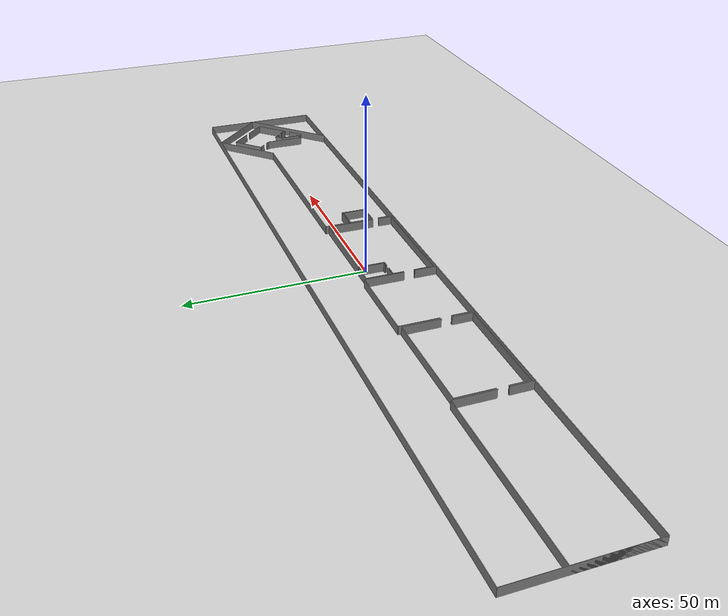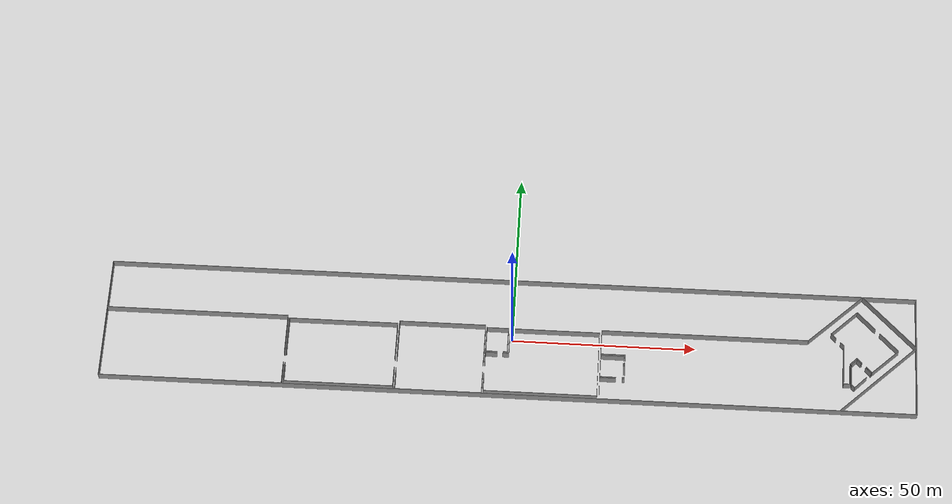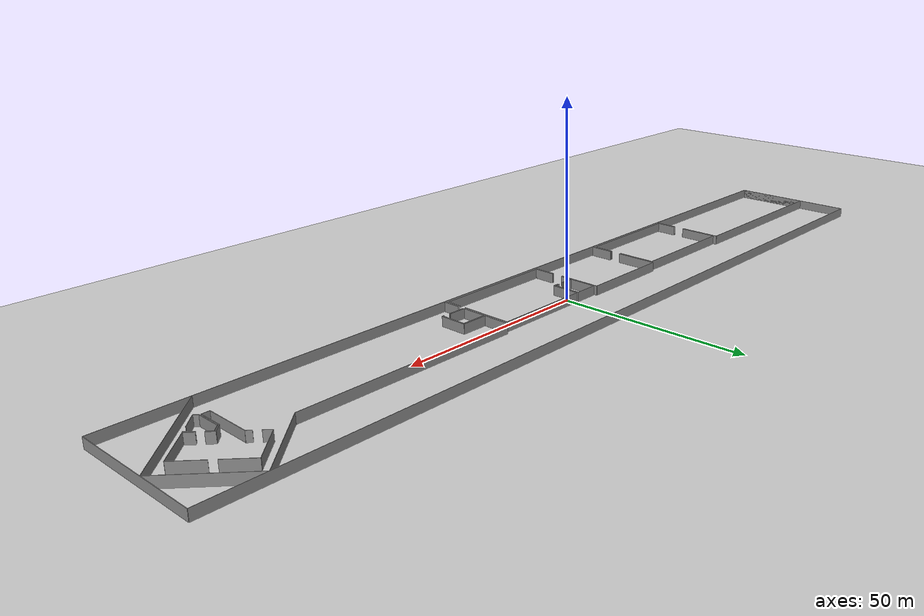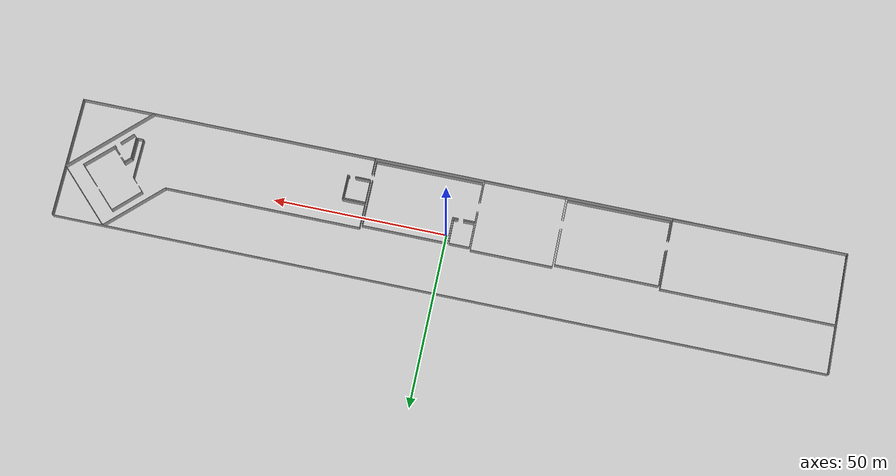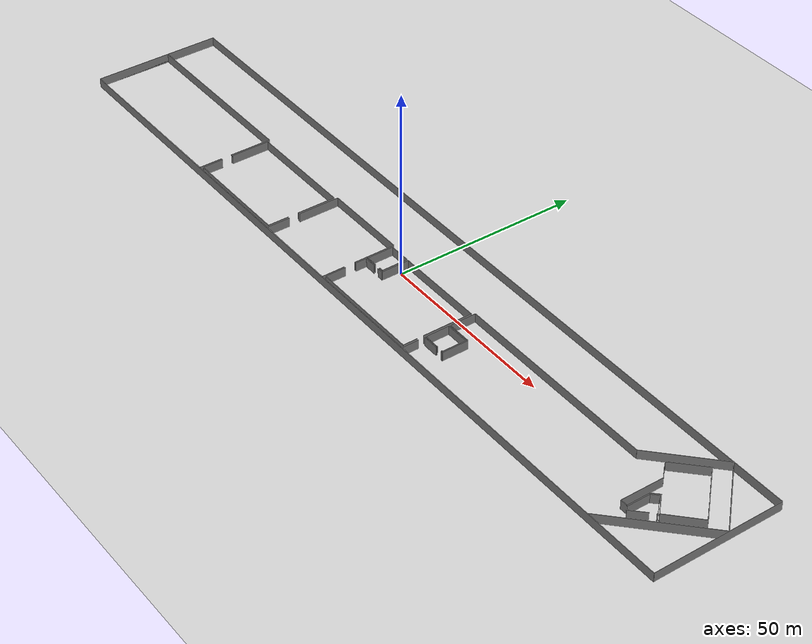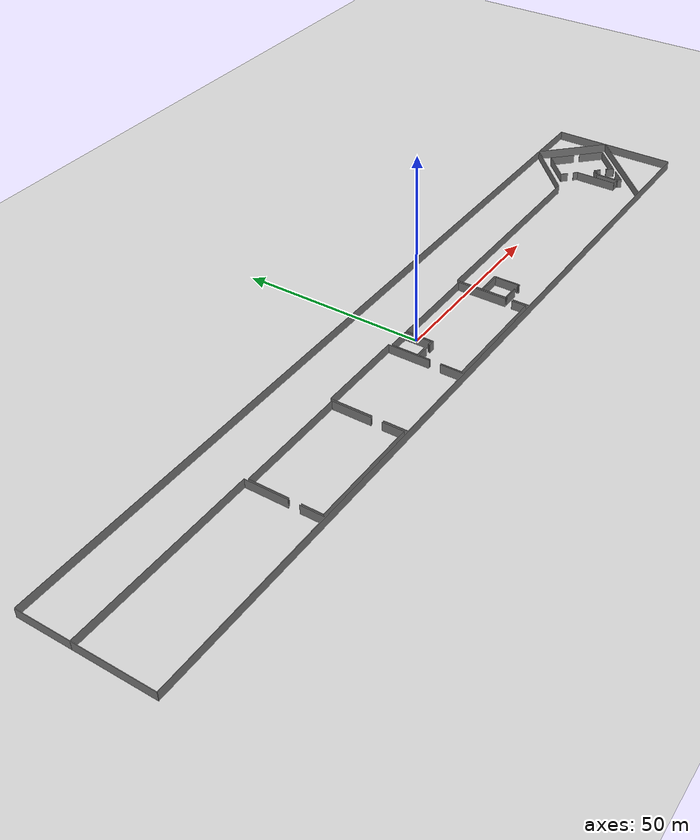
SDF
<sdf version="1.6">
  <world name="default">
    <light name="sun" type="directional">
      <cast_shadows>1</cast_shadows>
      <pose frame="">0 0 10 0 -0 0</pose>
      <diffuse>0.8 0.8 0.8 1</diffuse>
      <specular>0.1 0.1 0.1 1</specular>
      <attenuation>
        <range>1000</range>
        <constant>0.9</constant>
        <linear>0.01</linear>
        <quadratic>0.001</quadratic>
      </attenuation>
      <direction>-0.5 0.5 -1</direction>
    </light>
    <model name="ground_plane">
      <static>1</static>
      <link name="link">
        <collision name="collision">
          <geometry>
            <plane>
              <normal>0 0 1</normal>
              <size>100 100</size>
            </plane>
          </geometry>
          <surface>
            <friction>
              <ode>
                <mu>100</mu>
                <mu2>50</mu2>
              </ode>
              <torsional>
                <ode />
              </torsional>
            </friction>
            <contact>
              <ode />
            </contact>
            <bounce />
          </surface>
          <max_contacts>10</max_contacts>
        </collision>
        <visual name="visual">
          <cast_shadows>0</cast_shadows>
          <geometry>
            <plane>
              <normal>0 0 1</normal>
              <size>100 100</size>
            </plane>
          </geometry>
          <material>
            <script>
              <uri>file://media/materials/scripts/gazebo.material</uri>
              <name>Gazebo/Grey</name>
            </script>
          </material>
        </visual>
        <self_collide>0</self_collide>
        <kinematic>0</kinematic>
        <gravity>1</gravity>
      </link>
    </model>
    <gravity>0 0 -9.8</gravity>
    <magnetic_field>6e-06 2.3e-05 -4.2e-05</magnetic_field>
    <atmosphere type="adiabatic" />
    <physics default="0" name="default_physics" type="ode">
      <max_step_size>0.001</max_step_size>
      <real_time_factor>1</real_time_factor>
      <real_time_update_rate>1000</real_time_update_rate>
    </physics>
    <scene>
      <ambient>0.4 0.4 0.4 1</ambient>
      <background>0.7 0.7 0.7 1</background>
      <shadows>1</shadows>
    </scene>
    <spherical_coordinates>
      <surface_model>EARTH_WGS84</surface_model>
      <latitude_deg>0</latitude_deg>
      <longitude_deg>0</longitude_deg>
      <elevation>0</elevation>
      <heading_deg>0</heading_deg>
    </spherical_coordinates>
  <model name="0510035345_A_40_1_104">
		<static>1</static>
		<link name="Wall_0">
			<collision name="Wall_0_Collision">
				<geometry>
					<box>
						<size>20.7215912337 0.1 2.5</size>
					</box>
				</geometry>
				<pose frame="">10.3607956169 0 1.25 0 0 0</pose>
			</collision>
			<visual name="Wall_0_Visual">
				<pose frame="">10.3607956169 0 1.25 0 0 0</pose>
				<geometry>
					<box>
						<size>20.7215912337 0.1 2.5</size>
					</box>
				</geometry>
				<material>
					<script>
						<uri>file://media/materials/scripts/gazebo.material</uri>
						<name>Gazebo/Grey</name>
					</script>
					<ambient>1 1 1 1</ambient>
				</material>
			</visual>
			<pose frame="">0.0 -34.8943896694 0 0 0 1.57079632679</pose>
		</link>
		<link name="Wall_1">
			<collision name="Wall_1_Collision">
				<geometry>
					<box>
						<size>49.7723997384 0.1 2.5</size>
					</box>
				</geometry>
				<pose frame="">24.8861998692 0 1.25 0 0 0</pose>
			</collision>
			<visual name="Wall_1_Visual">
				<pose frame="">24.8861998692 0 1.25 0 0 0</pose>
				<geometry>
					<box>
						<size>49.7723997384 0.1 2.5</size>
					</box>
				</geometry>
				<material>
					<script>
						<uri>file://media/materials/scripts/gazebo.material</uri>
						<name>Gazebo/Grey</name>
					</script>
					<ambient>1 1 1 1</ambient>
				</material>
			</visual>
			<pose frame="">0.0 -14.1727984357 0 0 0 0.0</pose>
		</link>
		<link name="Wall_2">
			<collision name="Wall_2_Collision">
				<geometry>
					<box>
						<size>11.3514440078 0.1 2.5</size>
					</box>
				</geometry>
				<pose frame="">5.6757220039 0 1.25 0 0 0</pose>
			</collision>
			<visual name="Wall_2_Visual">
				<pose frame="">5.6757220039 0 1.25 0 0 0</pose>
				<geometry>
					<box>
						<size>11.3514440078 0.1 2.5</size>
					</box>
				</geometry>
				<material>
					<script>
						<uri>file://media/materials/scripts/gazebo.material</uri>
						<name>Gazebo/Grey</name>
					</script>
					<ambient>1 1 1 1</ambient>
				</material>
			</visual>
			<pose frame="">49.7723997384 -14.1727984357 0 0 0 -1.57079632679</pose>
		</link>
		<link name="Wall_3">
			<collision name="Wall_3_Collision">
				<geometry>
					<box>
						<size>6.35579285519 0.1 2.5</size>
					</box>
				</geometry>
				<pose frame="">3.1778964276 0 1.25 0 0 0</pose>
			</collision>
			<visual name="Wall_3_Visual">
				<pose frame="">3.1778964276 0 1.25 0 0 0</pose>
				<geometry>
					<box>
						<size>6.35579285519 0.1 2.5</size>
					</box>
				</geometry>
				<material>
					<script>
						<uri>file://media/materials/scripts/gazebo.material</uri>
						<name>Gazebo/Grey</name>
					</script>
					<ambient>1 1 1 1</ambient>
				</material>
			</visual>
			<pose frame="">49.7723997384 -28.4182257972 0 0 0 -1.57079632679</pose>
		</link>
		<link name="Wall_4">
			<collision name="Wall_4_Collision">
				<geometry>
					<box>
						<size>49.7725452926 0.1 2.5</size>
					</box>
				</geometry>
				<pose frame="">24.8862726463 0 1.25 0 0 0</pose>
			</collision>
			<visual name="Wall_4_Visual">
				<pose frame="">24.8862726463 0 1.25 0 0 0</pose>
				<geometry>
					<box>
						<size>49.7725452926 0.1 2.5</size>
					</box>
				</geometry>
				<material>
					<script>
						<uri>file://media/materials/scripts/gazebo.material</uri>
						<name>Gazebo/Grey</name>
					</script>
					<ambient>1 1 1 1</ambient>
				</material>
			</visual>
			<pose frame="">49.7723997384 -34.7740186524 0 0 0 -3.13917422926</pose>
		</link>
		<link name="Wall_5">
			<collision name="Wall_5_Collision">
				<geometry>
					<box>
						<size>5.58785624044 0.1 2.5</size>
					</box>
				</geometry>
				<pose frame="">2.79392812022 0 1.25 0 0 0</pose>
			</collision>
			<visual name="Wall_5_Visual">
				<pose frame="">2.79392812022 0 1.25 0 0 0</pose>
				<geometry>
					<box>
						<size>5.58785624044 0.1 2.5</size>
					</box>
				</geometry>
				<material>
					<script>
						<uri>file://media/materials/scripts/gazebo.material</uri>
						<name>Gazebo/Grey</name>
					</script>
					<ambient>1 1 1 1</ambient>
				</material>
			</visual>
			<pose frame="">50.2284890771 -34.0685530718 0 0 0 1.57079632679</pose>
		</link>
		<link name="Wall_6">
			<collision name="Wall_6_Collision">
				<geometry>
					<box>
						<size>10.5027521538 0.1 2.5</size>
					</box>
				</geometry>
				<pose frame="">5.2513760769 0 1.25 0 0 0</pose>
			</collision>
			<visual name="Wall_6_Visual">
				<pose frame="">5.2513760769 0 1.25 0 0 0</pose>
				<geometry>
					<box>
						<size>10.5027521538 0.1 2.5</size>
					</box>
				</geometry>
				<material>
					<script>
						<uri>file://media/materials/scripts/gazebo.material</uri>
						<name>Gazebo/Grey</name>
					</script>
					<ambient>1 1 1 1</ambient>
				</material>
			</visual>
			<pose frame="">50.2284890771 -25.4561845689 0 0 0 1.57079632679</pose>
		</link>
		<link name="Wall_7">
			<collision name="Wall_7_Collision">
				<geometry>
					<box>
						<size>29.7128490982 0.1 2.5</size>
					</box>
				</geometry>
				<pose frame="">14.8564245491 0 1.25 0 0 0</pose>
			</collision>
			<visual name="Wall_7_Visual">
				<pose frame="">14.8564245491 0 1.25 0 0 0</pose>
				<geometry>
					<box>
						<size>29.7128490982 0.1 2.5</size>
					</box>
				</geometry>
				<material>
					<script>
						<uri>file://media/materials/scripts/gazebo.material</uri>
						<name>Gazebo/Grey</name>
					</script>
					<ambient>1 1 1 1</ambient>
				</material>
			</visual>
			<pose frame="">50.2284890771 -14.9534324151 0 0 0 0.0</pose>
		</link>
		<link name="Wall_8">
			<collision name="Wall_8_Collision">
				<geometry>
					<box>
						<size>10.5461771409 0.1 2.5</size>
					</box>
				</geometry>
				<pose frame="">5.27308857047 0 1.25 0 0 0</pose>
			</collision>
			<visual name="Wall_8_Visual">
				<pose frame="">5.27308857047 0 1.25 0 0 0</pose>
				<geometry>
					<box>
						<size>10.5461771409 0.1 2.5</size>
					</box>
				</geometry>
				<material>
					<script>
						<uri>file://media/materials/scripts/gazebo.material</uri>
						<name>Gazebo/Grey</name>
					</script>
					<ambient>1 1 1 1</ambient>
				</material>
			</visual>
			<pose frame="">79.9413381753 -14.9534324151 0 0 0 -1.57079632679</pose>
		</link>
		<link name="Wall_9">
			<collision name="Wall_9_Collision">
				<geometry>
					<box>
						<size>5.67724568766 0.1 2.5</size>
					</box>
				</geometry>
				<pose frame="">2.83862284383 0 1.25 0 0 0</pose>
			</collision>
			<visual name="Wall_9_Visual">
				<pose frame="">2.83862284383 0 1.25 0 0 0</pose>
				<geometry>
					<box>
						<size>5.67724568766 0.1 2.5</size>
					</box>
				</geometry>
				<material>
					<script>
						<uri>file://media/materials/scripts/gazebo.material</uri>
						<name>Gazebo/Grey</name>
					</script>
					<ambient>1 1 1 1</ambient>
				</material>
			</visual>
			<pose frame="">79.9413381753 -28.3781021249 0 0 0 -1.57079632679</pose>
		</link>
		<link name="Wall_10">
			<collision name="Wall_10_Collision">
				<geometry>
					<box>
						<size>29.7128520326 0.1 2.5</size>
					</box>
				</geometry>
				<pose frame="">14.8564260163 0 1.25 0 0 0</pose>
			</collision>
			<visual name="Wall_10_Visual">
				<pose frame="">14.8564260163 0 1.25 0 0 0</pose>
				<geometry>
					<box>
						<size>29.7128520326 0.1 2.5</size>
					</box>
				</geometry>
				<material>
					<script>
						<uri>file://media/materials/scripts/gazebo.material</uri>
						<name>Gazebo/Grey</name>
					</script>
					<ambient>1 1 1 1</ambient>
				</material>
			</visual>
			<pose frame="">79.9413381753 -34.0553478126 0 0 0 -3.14114822437</pose>
		</link>
		<link name="Wall_11">
			<collision name="Wall_11_Collision">
				<geometry>
					<box>
						<size>6.39947178963 0.1 2.5</size>
					</box>
				</geometry>
				<pose frame="">3.19973589482 0 1.25 0 0 0</pose>
			</collision>
			<visual name="Wall_11_Visual">
				<pose frame="">3.19973589482 0 1.25 0 0 0</pose>
				<geometry>
					<box>
						<size>6.39947178963 0.1 2.5</size>
					</box>
				</geometry>
				<material>
					<script>
						<uri>file://media/materials/scripts/gazebo.material</uri>
						<name>Gazebo/Grey</name>
					</script>
					<ambient>1 1 1 1</ambient>
				</material>
			</visual>
			<pose frame="">80.4736117019 -34.8050002222 0 0 0 1.57079632679</pose>
		</link>
		<link name="Wall_12">
			<collision name="Wall_12_Collision">
				<geometry>
					<box>
						<size>11.1736809025 0.1 2.5</size>
					</box>
				</geometry>
				<pose frame="">5.58684045126 0 1.25 0 0 0</pose>
			</collision>
			<visual name="Wall_12_Visual">
				<pose frame="">5.58684045126 0 1.25 0 0 0</pose>
				<geometry>
					<box>
						<size>11.1736809025 0.1 2.5</size>
					</box>
				</geometry>
				<material>
					<script>
						<uri>file://media/materials/scripts/gazebo.material</uri>
						<name>Gazebo/Grey</name>
					</script>
					<ambient>1 1 1 1</ambient>
				</material>
			</visual>
			<pose frame="">80.4736117019 -25.411235898 0 0 0 1.57079632679</pose>
		</link>
		<link name="Wall_13">
			<collision name="Wall_13_Collision">
				<geometry>
					<box>
						<size>23.5376127685 0.1 2.5</size>
					</box>
				</geometry>
				<pose frame="">11.7688063842 0 1.25 0 0 0</pose>
			</collision>
			<visual name="Wall_13_Visual">
				<pose frame="">11.7688063842 0 1.25 0 0 0</pose>
				<geometry>
					<box>
						<size>23.5376127685 0.1 2.5</size>
					</box>
				</geometry>
				<material>
					<script>
						<uri>file://media/materials/scripts/gazebo.material</uri>
						<name>Gazebo/Grey</name>
					</script>
					<ambient>1 1 1 1</ambient>
				</material>
			</visual>
			<pose frame="">80.4736117019 -14.2375549955 0 0 0 0.0</pose>
		</link>
		<link name="Wall_14">
			<collision name="Wall_14_Collision">
				<geometry>
					<box>
						<size>11.2811006076 0.1 2.5</size>
					</box>
				</geometry>
				<pose frame="">5.64055030378 0 1.25 0 0 0</pose>
			</collision>
			<visual name="Wall_14_Visual">
				<pose frame="">5.64055030378 0 1.25 0 0 0</pose>
				<geometry>
					<box>
						<size>11.2811006076 0.1 2.5</size>
					</box>
				</geometry>
				<material>
					<script>
						<uri>file://media/materials/scripts/gazebo.material</uri>
						<name>Gazebo/Grey</name>
					</script>
					<ambient>1 1 1 1</ambient>
				</material>
			</visual>
			<pose frame="">104.01122447 -14.2375549955 0 0 0 -1.57079632679</pose>
		</link>
		<link name="Wall_15">
			<collision name="Wall_15_Collision">
				<geometry>
					<box>
						<size>6.30805076406 0.1 2.5</size>
					</box>
				</geometry>
				<pose frame="">3.15402538203 0 1.25 0 0 0</pose>
			</collision>
			<visual name="Wall_15_Visual">
				<pose frame="">3.15402538203 0 1.25 0 0 0</pose>
				<geometry>
					<box>
						<size>6.30805076406 0.1 2.5</size>
					</box>
				</geometry>
				<material>
					<script>
						<uri>file://media/materials/scripts/gazebo.material</uri>
						<name>Gazebo/Grey</name>
					</script>
					<ambient>1 1 1 1</ambient>
				</material>
			</visual>
			<pose frame="">104.01122447 -28.5045678769 0 0 0 -1.57079632679</pose>
		</link>
		<link name="Wall_16">
			<collision name="Wall_16_Collision">
				<geometry>
					<box>
						<size>23.5376140014 0.1 2.5</size>
					</box>
				</geometry>
				<pose frame="">11.7688070007 0 1.25 0 0 0</pose>
			</collision>
			<visual name="Wall_16_Visual">
				<pose frame="">11.7688070007 0 1.25 0 0 0</pose>
				<geometry>
					<box>
						<size>23.5376140014 0.1 2.5</size>
					</box>
				</geometry>
				<material>
					<script>
						<uri>file://media/materials/scripts/gazebo.material</uri>
						<name>Gazebo/Grey</name>
					</script>
					<ambient>1 1 1 1</ambient>
				</material>
			</visual>
			<pose frame="">104.01122447 -34.812618641 0 0 0 3.14126898362</pose>
		</link>
		<link name="Wall_17">
			<collision name="Wall_17_Collision">
				<geometry>
					<box>
						<size>5.55052598833 0.1 2.5</size>
					</box>
				</geometry>
				<pose frame="">2.77526299417 0 1.25 0 0 0</pose>
			</collision>
			<visual name="Wall_17_Visual">
				<pose frame="">2.77526299417 0 1.25 0 0 0</pose>
				<geometry>
					<box>
						<size>5.55052598833 0.1 2.5</size>
					</box>
				</geometry>
				<material>
					<script>
						<uri>file://media/materials/scripts/gazebo.material</uri>
						<name>Gazebo/Grey</name>
					</script>
					<ambient>1 1 1 1</ambient>
				</material>
			</visual>
			<pose frame="">104.38655857 -34.0454438681 0 0 0 1.57079632679</pose>
		</link>
		<link name="Wall_18">
			<collision name="Wall_18_Collision">
				<geometry>
					<box>
						<size>3.05219251744 0.1 2.5</size>
					</box>
				</geometry>
				<pose frame="">1.52609625872 0 1.25 0 0 0</pose>
			</collision>
			<visual name="Wall_18_Visual">
				<pose frame="">1.52609625872 0 1.25 0 0 0</pose>
				<geometry>
					<box>
						<size>3.05219251744 0.1 2.5</size>
					</box>
				</geometry>
				<material>
					<script>
						<uri>file://media/materials/scripts/gazebo.material</uri>
						<name>Gazebo/Grey</name>
					</script>
					<ambient>1 1 1 1</ambient>
				</material>
			</visual>
			<pose frame="">104.38655857 -25.5356700717 0 0 0 1.57079632679</pose>
		</link>
		<link name="Wall_19">
			<collision name="Wall_19_Collision">
				<geometry>
					<box>
						<size>3.23097141188 0.1 2.5</size>
					</box>
				</geometry>
				<pose frame="">1.61548570594 0 1.25 0 0 0</pose>
			</collision>
			<visual name="Wall_19_Visual">
				<pose frame="">1.61548570594 0 1.25 0 0 0</pose>
				<geometry>
					<box>
						<size>3.23097141188 0.1 2.5</size>
					</box>
				</geometry>
				<material>
					<script>
						<uri>file://media/materials/scripts/gazebo.material</uri>
						<name>Gazebo/Grey</name>
					</script>
					<ambient>1 1 1 1</ambient>
				</material>
			</visual>
			<pose frame="">104.38655857 -22.4834775542 0 0 0 0.0</pose>
		</link>
		<link name="Wall_20">
			<collision name="Wall_20_Collision">
				<geometry>
					<box>
						<size>1.65141924794 0.1 2.5</size>
					</box>
				</geometry>
				<pose frame="">0.825709623968 0 1.25 0 0 0</pose>
			</collision>
			<visual name="Wall_20_Visual">
				<pose frame="">0.825709623968 0 1.25 0 0 0</pose>
				<geometry>
					<box>
						<size>1.65141924794 0.1 2.5</size>
					</box>
				</geometry>
				<material>
					<script>
						<uri>file://media/materials/scripts/gazebo.material</uri>
						<name>Gazebo/Grey</name>
					</script>
					<ambient>1 1 1 1</ambient>
				</material>
			</visual>
			<pose frame="">109.10845454 -22.4834775542 0 0 0 0.0</pose>
		</link>
		<link name="Wall_21">
			<collision name="Wall_21_Collision">
				<geometry>
					<box>
						<size>7.54502802943 0.1 2.5</size>
					</box>
				</geometry>
				<pose frame="">3.77251401472 0 1.25 0 0 0</pose>
			</collision>
			<visual name="Wall_21_Visual">
				<pose frame="">3.77251401472 0 1.25 0 0 0</pose>
				<geometry>
					<box>
						<size>7.54502802943 0.1 2.5</size>
					</box>
				</geometry>
				<material>
					<script>
						<uri>file://media/materials/scripts/gazebo.material</uri>
						<name>Gazebo/Grey</name>
					</script>
					<ambient>1 1 1 1</ambient>
				</material>
			</visual>
			<pose frame="">110.759873788 -22.4834775542 0 0 0 1.57079632679</pose>
		</link>
		<link name="Wall_22">
			<collision name="Wall_22_Collision">
				<geometry>
					<box>
						<size>24.4632506523 0.1 2.5</size>
					</box>
				</geometry>
				<pose frame="">12.2316253262 0 1.25 0 0 0</pose>
			</collision>
			<visual name="Wall_22_Visual">
				<pose frame="">12.2316253262 0 1.25 0 0 0</pose>
				<geometry>
					<box>
						<size>24.4632506523 0.1 2.5</size>
					</box>
				</geometry>
				<material>
					<script>
						<uri>file://media/materials/scripts/gazebo.material</uri>
						<name>Gazebo/Grey</name>
					</script>
					<ambient>1 1 1 1</ambient>
				</material>
			</visual>
			<pose frame="">110.759873788 -14.9384495248 0 0 0 0.0</pose>
		</link>
		<link name="Wall_23">
			<collision name="Wall_23_Collision">
				<geometry>
					<box>
						<size>13.5369144134 0.1 2.5</size>
					</box>
				</geometry>
				<pose frame="">6.76845720671 0 1.25 0 0 0</pose>
			</collision>
			<visual name="Wall_23_Visual">
				<pose frame="">6.76845720671 0 1.25 0 0 0</pose>
				<geometry>
					<box>
						<size>13.5369144134 0.1 2.5</size>
					</box>
				</geometry>
				<material>
					<script>
						<uri>file://media/materials/scripts/gazebo.material</uri>
						<name>Gazebo/Grey</name>
					</script>
					<ambient>1 1 1 1</ambient>
				</material>
			</visual>
			<pose frame="">135.223124441 -14.9384495248 0 0 0 -1.57079632679</pose>
		</link>
		<link name="Wall_24">
			<collision name="Wall_24_Collision">
				<geometry>
					<box>
						<size>3.83460412791 0.1 2.5</size>
					</box>
				</geometry>
				<pose frame="">1.91730206396 0 1.25 0 0 0</pose>
			</collision>
			<visual name="Wall_24_Visual">
				<pose frame="">1.91730206396 0 1.25 0 0 0</pose>
				<geometry>
					<box>
						<size>3.83460412791 0.1 2.5</size>
					</box>
				</geometry>
				<material>
					<script>
						<uri>file://media/materials/scripts/gazebo.material</uri>
						<name>Gazebo/Grey</name>
					</script>
					<ambient>1 1 1 1</ambient>
				</material>
			</visual>
			<pose frame="">135.223124441 -30.2085542146 0 0 0 -1.57079632679</pose>
		</link>
		<link name="Wall_25">
			<collision name="Wall_25_Collision">
				<geometry>
					<box>
						<size>30.8365659555 0.1 2.5</size>
					</box>
				</geometry>
				<pose frame="">15.4182829777 0 1.25 0 0 0</pose>
			</collision>
			<visual name="Wall_25_Visual">
				<pose frame="">15.4182829777 0 1.25 0 0 0</pose>
				<geometry>
					<box>
						<size>30.8365659555 0.1 2.5</size>
					</box>
				</geometry>
				<material>
					<script>
						<uri>file://media/materials/scripts/gazebo.material</uri>
						<name>Gazebo/Grey</name>
					</script>
					<ambient>1 1 1 1</ambient>
				</material>
			</visual>
			<pose frame="">135.223124441 -34.0431583425 0 0 0 -3.1415185362</pose>
		</link>
		<link name="Wall_26">
			<collision name="Wall_26_Collision">
				<geometry>
					<box>
						<size>7.19661234311 0.1 2.5</size>
					</box>
				</geometry>
				<pose frame="">3.59830617155 0 1.25 0 0 0</pose>
			</collision>
			<visual name="Wall_26_Visual">
				<pose frame="">3.59830617155 0 1.25 0 0 0</pose>
				<geometry>
					<box>
						<size>7.19661234311 0.1 2.5</size>
					</box>
				</geometry>
				<material>
					<script>
						<uri>file://media/materials/scripts/gazebo.material</uri>
						<name>Gazebo/Grey</name>
					</script>
					<ambient>1 1 1 1</ambient>
				</material>
			</visual>
			<pose frame="">104.418809876 -22.1165237155 0 0 0 1.57079632679</pose>
		</link>
		<link name="Wall_27">
			<collision name="Wall_27_Collision">
				<geometry>
					<box>
						<size>5.89437062338 0.1 2.5</size>
					</box>
				</geometry>
				<pose frame="">2.94718531169 0 1.25 0 0 0</pose>
			</collision>
			<visual name="Wall_27_Visual">
				<pose frame="">2.94718531169 0 1.25 0 0 0</pose>
				<geometry>
					<box>
						<size>5.89437062338 0.1 2.5</size>
					</box>
				</geometry>
				<material>
					<script>
						<uri>file://media/materials/scripts/gazebo.material</uri>
						<name>Gazebo/Grey</name>
					</script>
					<ambient>1 1 1 1</ambient>
				</material>
			</visual>
			<pose frame="">104.418809876 -14.9199113724 0 0 0 0.0</pose>
		</link>
		<link name="Wall_28">
			<collision name="Wall_28_Collision">
				<geometry>
					<box>
						<size>7.14658472634 0.1 2.5</size>
					</box>
				</geometry>
				<pose frame="">3.57329236317 0 1.25 0 0 0</pose>
			</collision>
			<visual name="Wall_28_Visual">
				<pose frame="">3.57329236317 0 1.25 0 0 0</pose>
				<geometry>
					<box>
						<size>7.14658472634 0.1 2.5</size>
					</box>
				</geometry>
				<material>
					<script>
						<uri>file://media/materials/scripts/gazebo.material</uri>
						<name>Gazebo/Grey</name>
					</script>
					<ambient>1 1 1 1</ambient>
				</material>
			</visual>
			<pose frame="">110.313180499 -14.9199113724 0 0 0 -1.57079632679</pose>
		</link>
		<link name="Wall_29">
			<collision name="Wall_29_Collision">
				<geometry>
					<box>
						<size>1.15215886943 0.1 2.5</size>
					</box>
				</geometry>
				<pose frame="">0.576079434713 0 1.25 0 0 0</pose>
			</collision>
			<visual name="Wall_29_Visual">
				<pose frame="">0.576079434713 0 1.25 0 0 0</pose>
				<geometry>
					<box>
						<size>1.15215886943 0.1 2.5</size>
					</box>
				</geometry>
				<material>
					<script>
						<uri>file://media/materials/scripts/gazebo.material</uri>
						<name>Gazebo/Grey</name>
					</script>
					<ambient>1 1 1 1</ambient>
				</material>
			</visual>
			<pose frame="">110.313180499 -22.0664960987 0 0 0 3.14159265359</pose>
		</link>
		<link name="Wall_30">
			<collision name="Wall_30_Collision">
				<geometry>
					<box>
						<size>3.19225555813 0.1 2.5</size>
					</box>
				</geometry>
				<pose frame="">1.59612777907 0 1.25 0 0 0</pose>
			</collision>
			<visual name="Wall_30_Visual">
				<pose frame="">1.59612777907 0 1.25 0 0 0</pose>
				<geometry>
					<box>
						<size>3.19225555813 0.1 2.5</size>
					</box>
				</geometry>
				<material>
					<script>
						<uri>file://media/materials/scripts/gazebo.material</uri>
						<name>Gazebo/Grey</name>
					</script>
					<ambient>1 1 1 1</ambient>
				</material>
			</visual>
			<pose frame="">107.610673405 -22.0664960987 0 0 0 -3.12592045446</pose>
		</link>
		<link name="Wall_31">
			<collision name="Wall_31_Collision">
				<geometry>
					<box>
						<size>6.44822966993 0.1 2.5</size>
					</box>
				</geometry>
				<pose frame="">3.22411483497 0 1.25 0 0 0</pose>
			</collision>
			<visual name="Wall_31_Visual">
				<pose frame="">3.22411483497 0 1.25 0 0 0</pose>
				<geometry>
					<box>
						<size>6.44822966993 0.1 2.5</size>
					</box>
				</geometry>
				<material>
					<script>
						<uri>file://media/materials/scripts/gazebo.material</uri>
						<name>Gazebo/Grey</name>
					</script>
					<ambient>1 1 1 1</ambient>
				</material>
			</visual>
			<pose frame="">135.815837423 -28.1439627205 0 0 0 1.57079632679</pose>
		</link>
		<link name="Wall_32">
			<collision name="Wall_32_Collision">
				<geometry>
					<box>
						<size>6.31389155181 0.1 2.5</size>
					</box>
				</geometry>
				<pose frame="">3.1569457759 0 1.25 0 0 0</pose>
			</collision>
			<visual name="Wall_32_Visual">
				<pose frame="">3.1569457759 0 1.25 0 0 0</pose>
				<geometry>
					<box>
						<size>6.31389155181 0.1 2.5</size>
					</box>
				</geometry>
				<material>
					<script>
						<uri>file://media/materials/scripts/gazebo.material</uri>
						<name>Gazebo/Grey</name>
					</script>
					<ambient>1 1 1 1</ambient>
				</material>
			</visual>
			<pose frame="">135.815837423 -21.6957330506 0 0 0 0.0</pose>
		</link>
		<link name="Wall_33">
			<collision name="Wall_33_Collision">
				<geometry>
					<box>
						<size>6.48175071264 0.1 2.5</size>
					</box>
				</geometry>
				<pose frame="">3.24087535632 0 1.25 0 0 0</pose>
			</collision>
			<visual name="Wall_33_Visual">
				<pose frame="">3.24087535632 0 1.25 0 0 0</pose>
				<geometry>
					<box>
						<size>6.48175071264 0.1 2.5</size>
					</box>
				</geometry>
				<material>
					<script>
						<uri>file://media/materials/scripts/gazebo.material</uri>
						<name>Gazebo/Grey</name>
					</script>
					<ambient>1 1 1 1</ambient>
				</material>
			</visual>
			<pose frame="">142.129728975 -21.6957330506 0 0 0 -1.57079632679</pose>
		</link>
		<link name="Wall_34">
			<collision name="Wall_34_Collision">
				<geometry>
					<box>
						<size>0.302197278955 0.1 2.5</size>
					</box>
				</geometry>
				<pose frame="">0.151098639477 0 1.25 0 0 0</pose>
			</collision>
			<visual name="Wall_34_Visual">
				<pose frame="">0.151098639477 0 1.25 0 0 0</pose>
				<geometry>
					<box>
						<size>0.302197278955 0.1 2.5</size>
					</box>
				</geometry>
				<material>
					<script>
						<uri>file://media/materials/scripts/gazebo.material</uri>
						<name>Gazebo/Grey</name>
					</script>
					<ambient>1 1 1 1</ambient>
				</material>
			</visual>
			<pose frame="">142.129728975 -28.1774837632 0 0 0 3.14159265359</pose>
		</link>
		<link name="Wall_35">
			<collision name="Wall_35_Collision">
				<geometry>
					<box>
						<size>4.36091175459 0.1 2.5</size>
					</box>
				</geometry>
				<pose frame="">2.1804558773 0 1.25 0 0 0</pose>
			</collision>
			<visual name="Wall_35_Visual">
				<pose frame="">2.1804558773 0 1.25 0 0 0</pose>
				<geometry>
					<box>
						<size>4.36091175459 0.1 2.5</size>
					</box>
				</geometry>
				<material>
					<script>
						<uri>file://media/materials/scripts/gazebo.material</uri>
						<name>Gazebo/Grey</name>
					</script>
					<ambient>1 1 1 1</ambient>
				</material>
			</visual>
			<pose frame="">140.176620342 -28.1774837632 0 0 0 3.13390587277</pose>
		</link>
		<link name="Wall_36">
			<collision name="Wall_36_Collision">
				<geometry>
					<box>
						<size>4.59644600763 0.1 2.5</size>
					</box>
				</geometry>
				<pose frame="">2.29822300382 0 1.25 0 0 0</pose>
			</collision>
			<visual name="Wall_36_Visual">
				<pose frame="">2.29822300382 0 1.25 0 0 0</pose>
				<geometry>
					<box>
						<size>4.59644600763 0.1 2.5</size>
					</box>
				</geometry>
				<material>
					<script>
						<uri>file://media/materials/scripts/gazebo.material</uri>
						<name>Gazebo/Grey</name>
					</script>
					<ambient>1 1 1 1</ambient>
				</material>
			</visual>
			<pose frame="">135.808726899 -34.8303949515 0 0 0 1.57079632679</pose>
		</link>
		<link name="Wall_37">
			<collision name="Wall_37_Collision">
				<geometry>
					<box>
						<size>4.34935529131 0.1 2.5</size>
					</box>
				</geometry>
				<pose frame="">2.17467764565 0 1.25 0 0 0</pose>
			</collision>
			<visual name="Wall_37_Visual">
				<pose frame="">2.17467764565 0 1.25 0 0 0</pose>
				<geometry>
					<box>
						<size>4.34935529131 0.1 2.5</size>
					</box>
				</geometry>
				<material>
					<script>
						<uri>file://media/materials/scripts/gazebo.material</uri>
						<name>Gazebo/Grey</name>
					</script>
					<ambient>1 1 1 1</ambient>
				</material>
			</visual>
			<pose frame="">135.808726899 -28.4758718328 0 0 0 0.0</pose>
		</link>
		<link name="Wall_38">
			<collision name="Wall_38_Collision">
				<geometry>
					<box>
						<size>0.575952461067 0.1 2.5</size>
					</box>
				</geometry>
				<pose frame="">0.287976230533 0 1.25 0 0 0</pose>
			</collision>
			<visual name="Wall_38_Visual">
				<pose frame="">0.287976230533 0 1.25 0 0 0</pose>
				<geometry>
					<box>
						<size>0.575952461067 0.1 2.5</size>
					</box>
				</geometry>
				<material>
					<script>
						<uri>file://media/materials/scripts/gazebo.material</uri>
						<name>Gazebo/Grey</name>
					</script>
					<ambient>1 1 1 1</ambient>
				</material>
			</visual>
			<pose frame="">141.867147474 -28.4758718328 0 0 0 0.0</pose>
		</link>
		<link name="Wall_39">
			<collision name="Wall_39_Collision">
				<geometry>
					<box>
						<size>7.18162945281 0.1 2.5</size>
					</box>
				</geometry>
				<pose frame="">3.5908147264 0 1.25 0 0 0</pose>
			</collision>
			<visual name="Wall_39_Visual">
				<pose frame="">3.5908147264 0 1.25 0 0 0</pose>
				<geometry>
					<box>
						<size>7.18162945281 0.1 2.5</size>
					</box>
				</geometry>
				<material>
					<script>
						<uri>file://media/materials/scripts/gazebo.material</uri>
						<name>Gazebo/Grey</name>
					</script>
					<ambient>1 1 1 1</ambient>
				</material>
			</visual>
			<pose frame="">142.443099935 -28.4758718328 0 0 0 1.57079632679</pose>
		</link>
		<link name="Wall_40">
			<collision name="Wall_40_Collision">
				<geometry>
					<box>
						<size>6.62472303873 0.1 2.5</size>
					</box>
				</geometry>
				<pose frame="">3.31236151937 0 1.25 0 0 0</pose>
			</collision>
			<visual name="Wall_40_Visual">
				<pose frame="">3.31236151937 0 1.25 0 0 0</pose>
				<geometry>
					<box>
						<size>6.62472303873 0.1 2.5</size>
					</box>
				</geometry>
				<material>
					<script>
						<uri>file://media/materials/scripts/gazebo.material</uri>
						<name>Gazebo/Grey</name>
					</script>
					<ambient>1 1 1 1</ambient>
				</material>
			</visual>
			<pose frame="">142.443099935 -21.29424238 0 0 0 3.14159265359</pose>
		</link>
		<link name="Wall_41">
			<collision name="Wall_41_Collision">
				<geometry>
					<box>
						<size>7.14328341153 0.1 2.5</size>
					</box>
				</geometry>
				<pose frame="">3.57164170576 0 1.25 0 0 0</pose>
			</collision>
			<visual name="Wall_41_Visual">
				<pose frame="">3.57164170576 0 1.25 0 0 0</pose>
				<geometry>
					<box>
						<size>7.14328341153 0.1 2.5</size>
					</box>
				</geometry>
				<material>
					<script>
						<uri>file://media/materials/scripts/gazebo.material</uri>
						<name>Gazebo/Grey</name>
					</script>
					<ambient>1 1 1 1</ambient>
				</material>
			</visual>
			<pose frame="">135.818376896 -21.29424238 0 0 0 1.57079632679</pose>
		</link>
		<link name="Wall_42">
			<collision name="Wall_42_Collision">
				<geometry>
					<box>
						<size>56.3189070108 0.1 2.5</size>
					</box>
				</geometry>
				<pose frame="">28.1594535054 0 1.25 0 0 0</pose>
			</collision>
			<visual name="Wall_42_Visual">
				<pose frame="">28.1594535054 0 1.25 0 0 0</pose>
				<geometry>
					<box>
						<size>56.3189070108 0.1 2.5</size>
					</box>
				</geometry>
				<material>
					<script>
						<uri>file://media/materials/scripts/gazebo.material</uri>
						<name>Gazebo/Grey</name>
					</script>
					<ambient>1 1 1 1</ambient>
				</material>
			</visual>
			<pose frame="">135.818376896 -14.1509589685 0 0 0 0.0</pose>
		</link>
		<link name="Wall_43">
			<collision name="Wall_43_Collision">
				<geometry>
					<box>
						<size>20.4835739532 0.1 2.5</size>
					</box>
				</geometry>
				<pose frame="">10.2417869766 0 1.25 0 0 0</pose>
			</collision>
			<visual name="Wall_43_Visual">
				<pose frame="">10.2417869766 0 1.25 0 0 0</pose>
				<geometry>
					<box>
						<size>20.4835739532 0.1 2.5</size>
					</box>
				</geometry>
				<material>
					<script>
						<uri>file://media/materials/scripts/gazebo.material</uri>
						<name>Gazebo/Grey</name>
					</script>
					<ambient>1 1 1 1</ambient>
				</material>
			</visual>
			<pose frame="">192.137283907 -14.1509589685 0 0 0 0.762656079105</pose>
		</link>
		<link name="Wall_44">
			<collision name="Wall_44_Collision">
				<geometry>
					<box>
						<size>20.7555848312 0.1 2.5</size>
					</box>
				</geometry>
				<pose frame="">10.3777924156 0 1.25 0 0 0</pose>
			</collision>
			<visual name="Wall_44_Visual">
				<pose frame="">10.3777924156 0 1.25 0 0 0</pose>
				<geometry>
					<box>
						<size>20.7555848312 0.1 2.5</size>
					</box>
				</geometry>
				<material>
					<script>
						<uri>file://media/materials/scripts/gazebo.material</uri>
						<name>Gazebo/Grey</name>
					</script>
					<ambient>1 1 1 1</ambient>
				</material>
			</visual>
			<pose frame="">206.946982154 -0.0 0 0 0 -0.787699476103</pose>
		</link>
		<link name="Wall_45">
			<collision name="Wall_45_Collision">
				<geometry>
					<box>
						<size>29.0223902938 0.1 2.5</size>
					</box>
				</geometry>
				<pose frame="">14.5111951469 0 1.25 0 0 0</pose>
			</collision>
			<visual name="Wall_45_Visual">
				<pose frame="">14.5111951469 0 1.25 0 0 0</pose>
				<geometry>
					<box>
						<size>29.0223902938 0.1 2.5</size>
					</box>
				</geometry>
				<material>
					<script>
						<uri>file://media/materials/scripts/gazebo.material</uri>
						<name>Gazebo/Grey</name>
					</script>
					<ambient>1 1 1 1</ambient>
				</material>
			</visual>
			<pose frame="">221.589583082 -14.7101509082 0 0 0 -2.37251709584</pose>
		</link>
		<link name="Wall_46">
			<collision name="Wall_46_Collision">
				<geometry>
					<box>
						<size>64.9267360005 0.1 2.5</size>
					</box>
				</geometry>
				<pose frame="">32.4633680003 0 1.25 0 0 0</pose>
			</collision>
			<visual name="Wall_46_Visual">
				<pose frame="">32.4633680003 0 1.25 0 0 0</pose>
				<geometry>
					<box>
						<size>64.9267360005 0.1 2.5</size>
					</box>
				</geometry>
				<material>
					<script>
						<uri>file://media/materials/scripts/gazebo.material</uri>
						<name>Gazebo/Grey</name>
					</script>
					<ambient>1 1 1 1</ambient>
				</material>
			</visual>
			<pose frame="">200.735431361 -34.8943896694 0 0 0 3.14060700835</pose>
		</link>
		<link name="Wall_47">
			<collision name="Wall_47_Collision">
				<geometry>
					<box>
						<size>1.14075772674 0.1 2.5</size>
					</box>
				</geometry>
				<pose frame="">0.570378863372 0 1.25 0 0 0</pose>
			</collision>
			<visual name="Wall_47_Visual">
				<pose frame="">0.570378863372 0 1.25 0 0 0</pose>
				<geometry>
					<box>
						<size>1.14075772674 0.1 2.5</size>
					</box>
				</geometry>
				<material>
					<script>
						<uri>file://media/materials/scripts/gazebo.material</uri>
						<name>Gazebo/Grey</name>
					</script>
					<ambient>1 1 1 1</ambient>
				</material>
			</visual>
			<pose frame="">204.73510123 -27.746027312 0 0 0 2.33242318539</pose>
		</link>
		<link name="Wall_48">
			<collision name="Wall_48_Collision">
				<geometry>
					<box>
						<size>6.20218021752 0.1 2.5</size>
					</box>
				</geometry>
				<pose frame="">3.10109010876 0 1.25 0 0 0</pose>
			</collision>
			<visual name="Wall_48_Visual">
				<pose frame="">3.10109010876 0 1.25 0 0 0</pose>
				<geometry>
					<box>
						<size>6.20218021752 0.1 2.5</size>
					</box>
				</geometry>
				<material>
					<script>
						<uri>file://media/materials/scripts/gazebo.material</uri>
						<name>Gazebo/Grey</name>
					</script>
					<ambient>1 1 1 1</ambient>
				</material>
			</visual>
			<pose frame="">203.947864621 -26.9204446617 0 0 0 1.56793018388</pose>
		</link>
		<link name="Wall_49">
			<collision name="Wall_49_Collision">
				<geometry>
					<box>
						<size>2.05107184168 0.1 2.5</size>
					</box>
				</geometry>
				<pose frame="">1.02553592084 0 1.25 0 0 0</pose>
			</collision>
			<visual name="Wall_49_Visual">
				<pose frame="">1.02553592084 0 1.25 0 0 0</pose>
				<geometry>
					<box>
						<size>2.05107184168 0.1 2.5</size>
					</box>
				</geometry>
				<material>
					<script>
						<uri>file://media/materials/scripts/gazebo.material</uri>
						<name>Gazebo/Grey</name>
					</script>
					<ambient>1 1 1 1</ambient>
				</material>
			</visual>
			<pose frame="">203.965640931 -20.7182899189 0 0 0 0.778569342916</pose>
		</link>
		<link name="Wall_50">
			<collision name="Wall_50_Collision">
				<geometry>
					<box>
						<size>1.52004214177 0.1 2.5</size>
					</box>
				</geometry>
				<pose frame="">0.760021070884 0 1.25 0 0 0</pose>
			</collision>
			<visual name="Wall_50_Visual">
				<pose frame="">0.760021070884 0 1.25 0 0 0</pose>
				<geometry>
					<box>
						<size>1.52004214177 0.1 2.5</size>
					</box>
				</geometry>
				<material>
					<script>
						<uri>file://media/materials/scripts/gazebo.material</uri>
						<name>Gazebo/Grey</name>
					</script>
					<ambient>1 1 1 1</ambient>
				</material>
			</visual>
			<pose frame="">205.425837867 -19.2779008717 0 0 0 -0.785988830783</pose>
		</link>
		<link name="Wall_51">
			<collision name="Wall_51_Collision">
				<geometry>
					<box>
						<size>2.27582924133 0.1 2.5</size>
					</box>
				</geometry>
				<pose frame="">1.13791462066 0 1.25 0 0 0</pose>
			</collision>
			<visual name="Wall_51_Visual">
				<pose frame="">1.13791462066 0 1.25 0 0 0</pose>
				<geometry>
					<box>
						<size>2.27582924133 0.1 2.5</size>
					</box>
				</geometry>
				<material>
					<script>
						<uri>file://media/materials/scripts/gazebo.material</uri>
						<name>Gazebo/Grey</name>
					</script>
					<ambient>1 1 1 1</ambient>
				</material>
			</visual>
			<pose frame="">207.698666142 -21.5570778285 0 0 0 -0.797470487799</pose>
		</link>
		<link name="Wall_52">
			<collision name="Wall_52_Collision">
				<geometry>
					<box>
						<size>0.213150747942 0.1 2.5</size>
					</box>
				</geometry>
				<pose frame="">0.106575373971 0 1.25 0 0 0</pose>
			</collision>
			<visual name="Wall_52_Visual">
				<pose frame="">0.106575373971 0 1.25 0 0 0</pose>
				<geometry>
					<box>
						<size>0.213150747942 0.1 2.5</size>
					</box>
				</geometry>
				<material>
					<script>
						<uri>file://media/materials/scripts/gazebo.material</uri>
						<name>Gazebo/Grey</name>
					</script>
					<ambient>1 1 1 1</ambient>
				</material>
			</visual>
			<pose frame="">209.288376198 -23.18564182 0 0 0 -2.35029733867</pose>
		</link>
		<link name="Wall_53">
			<collision name="Wall_53_Collision">
				<geometry>
					<box>
						<size>4.64293466195 0.1 2.5</size>
					</box>
				</geometry>
				<pose frame="">2.32146733098 0 1.25 0 0 0</pose>
			</collision>
			<visual name="Wall_53_Visual">
				<pose frame="">2.32146733098 0 1.25 0 0 0</pose>
				<geometry>
					<box>
						<size>4.64293466195 0.1 2.5</size>
					</box>
				</geometry>
				<material>
					<script>
						<uri>file://media/materials/scripts/gazebo.material</uri>
						<name>Gazebo/Grey</name>
					</script>
					<ambient>1 1 1 1</ambient>
				</material>
			</visual>
			<pose frame="">207.975468691 -24.4208414544 0 0 0 -2.3432765115</pose>
		</link>
		<link name="Wall_54">
			<collision name="Wall_54_Collision">
				<geometry>
					<box>
						<size>11.5040646465 0.1 2.5</size>
					</box>
				</geometry>
				<pose frame="">5.75203232325 0 1.25 0 0 0</pose>
			</collision>
			<visual name="Wall_54_Visual">
				<pose frame="">5.75203232325 0 1.25 0 0 0</pose>
				<geometry>
					<box>
						<size>11.5040646465 0.1 2.5</size>
					</box>
				</geometry>
				<material>
					<script>
						<uri>file://media/materials/scripts/gazebo.material</uri>
						<name>Gazebo/Grey</name>
					</script>
					<ambient>1 1 1 1</ambient>
				</material>
			</visual>
			<pose frame="">201.784233682 -26.7548710265 0 0 0 1.56417390705</pose>
		</link>
		<link name="Wall_55">
			<collision name="Wall_55_Collision">
				<geometry>
					<box>
						<size>1.34687860493 0.1 2.5</size>
					</box>
				</geometry>
				<pose frame="">0.673439302467 0 1.25 0 0 0</pose>
			</collision>
			<visual name="Wall_55_Visual">
				<pose frame="">0.673439302467 0 1.25 0 0 0</pose>
				<geometry>
					<box>
						<size>1.34687860493 0.1 2.5</size>
					</box>
				</geometry>
				<material>
					<script>
						<uri>file://media/materials/scripts/gazebo.material</uri>
						<name>Gazebo/Grey</name>
					</script>
					<ambient>1 1 1 1</ambient>
				</material>
			</visual>
			<pose frame="">201.86041787 -15.2510586428 0 0 0 2.3428619469</pose>
		</link>
		<link name="Wall_56">
			<collision name="Wall_56_Collision">
				<geometry>
					<box>
						<size>1.98398867582 0.1 2.5</size>
					</box>
				</geometry>
				<pose frame="">0.99199433791 0 1.25 0 0 0</pose>
			</collision>
			<visual name="Wall_56_Visual">
				<pose frame="">0.99199433791 0 1.25 0 0 0</pose>
				<geometry>
					<box>
						<size>1.98398867582 0.1 2.5</size>
					</box>
				</geometry>
				<material>
					<script>
						<uri>file://media/materials/scripts/gazebo.material</uri>
						<name>Gazebo/Grey</name>
					</script>
					<ambient>1 1 1 1</ambient>
				</material>
			</visual>
			<pose frame="">199.737418499 -13.1333921645 0 0 0 2.31654137335</pose>
		</link>
		<link name="Wall_57">
			<collision name="Wall_57_Collision">
				<geometry>
					<box>
						<size>9.90017828421 0.1 2.5</size>
					</box>
				</geometry>
				<pose frame="">4.95008914211 0 1.25 0 0 0</pose>
			</collision>
			<visual name="Wall_57_Visual">
				<pose frame="">4.95008914211 0 1.25 0 0 0</pose>
				<geometry>
					<box>
						<size>9.90017828421 0.1 2.5</size>
					</box>
				</geometry>
				<material>
					<script>
						<uri>file://media/materials/scripts/gazebo.material</uri>
						<name>Gazebo/Grey</name>
					</script>
					<ambient>1 1 1 1</ambient>
				</material>
			</visual>
			<pose frame="">198.391243897 -11.6759886486 0 0 0 0.772828309032</pose>
		</link>
		<link name="Wall_58">
			<collision name="Wall_58_Collision">
				<geometry>
					<box>
						<size>7.08869102075 0.1 2.5</size>
					</box>
				</geometry>
				<pose frame="">3.54434551037 0 1.25 0 0 0</pose>
			</collision>
			<visual name="Wall_58_Visual">
				<pose frame="">3.54434551037 0 1.25 0 0 0</pose>
				<geometry>
					<box>
						<size>7.08869102075 0.1 2.5</size>
					</box>
				</geometry>
				<material>
					<script>
						<uri>file://media/materials/scripts/gazebo.material</uri>
						<name>Gazebo/Grey</name>
					</script>
					<ambient>1 1 1 1</ambient>
				</material>
			</visual>
			<pose frame="">205.479166799 -4.76405122117 0 0 0 -0.789856538964</pose>
		</link>
		<link name="Wall_59">
			<collision name="Wall_59_Collision">
				<geometry>
					<box>
						<size>7.19177344557 0.1 2.5</size>
					</box>
				</geometry>
				<pose frame="">3.59588672279 0 1.25 0 0 0</pose>
			</collision>
			<visual name="Wall_59_Visual">
				<pose frame="">3.59588672279 0 1.25 0 0 0</pose>
				<geometry>
					<box>
						<size>7.19177344557 0.1 2.5</size>
					</box>
				</geometry>
				<material>
					<script>
						<uri>file://media/materials/scripts/gazebo.material</uri>
						<name>Gazebo/Grey</name>
					</script>
					<ambient>1 1 1 1</ambient>
				</material>
			</visual>
			<pose frame="">211.632309714 -10.9458901805 0 0 0 -0.79014219772</pose>
		</link>
		<link name="Wall_60">
			<collision name="Wall_60_Collision">
				<geometry>
					<box>
						<size>9.95597666914 0.1 2.5</size>
					</box>
				</geometry>
				<pose frame="">4.97798833457 0 1.25 0 0 0</pose>
			</collision>
			<visual name="Wall_60_Visual">
				<pose frame="">4.97798833457 0 1.25 0 0 0</pose>
				<geometry>
					<box>
						<size>9.95597666914 0.1 2.5</size>
					</box>
				</geometry>
				<material>
					<script>
						<uri>file://media/materials/scripts/gazebo.material</uri>
						<name>Gazebo/Grey</name>
					</script>
					<ambient>1 1 1 1</ambient>
				</material>
			</visual>
			<pose frame="">216.693479268 -16.0553097205 0 0 0 -2.37874163381</pose>
		</link>
		<link name="Wall_61">
			<collision name="Wall_61_Collision">
				<geometry>
					<box>
						<size>2.24388000747 0.1 2.5</size>
					</box>
				</geometry>
				<pose frame="">1.12194000373 0 1.25 0 0 0</pose>
			</collision>
			<visual name="Wall_61_Visual">
				<pose frame="">1.12194000373 0 1.25 0 0 0</pose>
				<geometry>
					<box>
						<size>2.24388000747 0.1 2.5</size>
					</box>
				</geometry>
				<material>
					<script>
						<uri>file://media/materials/scripts/gazebo.material</uri>
						<name>Gazebo/Grey</name>
					</script>
					<ambient>1 1 1 1</ambient>
				</material>
			</visual>
			<pose frame="">209.496612978 -22.9347418943 0 0 0 2.35651459261</pose>
		</link>
		<link name="Wall_62">
			<collision name="Wall_62_Collision">
				<geometry>
					<box>
						<size>1.98173633988 0.1 2.5</size>
					</box>
				</geometry>
				<pose frame="">0.99086816994 0 1.25 0 0 0</pose>
			</collision>
			<visual name="Wall_62_Visual">
				<pose frame="">0.99086816994 0 1.25 0 0 0</pose>
				<geometry>
					<box>
						<size>1.98173633988 0.1 2.5</size>
					</box>
				</geometry>
				<material>
					<script>
						<uri>file://media/materials/scripts/gazebo.material</uri>
						<name>Gazebo/Grey</name>
					</script>
					<ambient>1 1 1 1</ambient>
				</material>
			</visual>
			<pose frame="">206.776837467 -20.2073479649 0 0 0 2.35112023146</pose>
		</link>
		<link name="Wall_63">
			<collision name="Wall_63_Collision">
				<geometry>
					<box>
						<size>2.53693230284 0.1 2.5</size>
					</box>
				</geometry>
				<pose frame="">1.26846615142 0 1.25 0 0 0</pose>
			</collision>
			<visual name="Wall_63_Visual">
				<pose frame="">1.26846615142 0 1.25 0 0 0</pose>
				<geometry>
					<box>
						<size>2.53693230284 0.1 2.5</size>
					</box>
				</geometry>
				<material>
					<script>
						<uri>file://media/materials/scripts/gazebo.material</uri>
						<name>Gazebo/Grey</name>
					</script>
					<ambient>1 1 1 1</ambient>
				</material>
			</visual>
			<pose frame="">205.382666827 -18.7989562766 0 0 0 -2.34437370577</pose>
		</link>
		<link name="Wall_64">
			<collision name="Wall_64_Collision">
				<geometry>
					<box>
						<size>6.12725923626 0.1 2.5</size>
					</box>
				</geometry>
				<pose frame="">3.06362961813 0 1.25 0 0 0</pose>
			</collision>
			<visual name="Wall_64_Visual">
				<pose frame="">3.06362961813 0 1.25 0 0 0</pose>
				<geometry>
					<box>
						<size>6.12725923626 0.1 2.5</size>
					</box>
				</geometry>
				<material>
					<script>
						<uri>file://media/materials/scripts/gazebo.material</uri>
						<name>Gazebo/Grey</name>
					</script>
					<ambient>1 1 1 1</ambient>
				</material>
			</visual>
			<pose frame="">203.610114721 -20.6139175814 0 0 0 -1.56830959452</pose>
		</link>
		<link name="Wall_65">
			<collision name="Wall_65_Collision">
				<geometry>
					<box>
						<size>1.84116894495 0.1 2.5</size>
					</box>
				</geometry>
				<pose frame="">0.920584472476 0 1.25 0 0 0</pose>
			</collision>
			<visual name="Wall_65_Visual">
				<pose frame="">0.920584472476 0 1.25 0 0 0</pose>
				<geometry>
					<box>
						<size>1.84116894495 0.1 2.5</size>
					</box>
				</geometry>
				<material>
					<script>
						<uri>file://media/materials/scripts/gazebo.material</uri>
						<name>Gazebo/Grey</name>
					</script>
					<ambient>1 1 1 1</ambient>
				</material>
			</visual>
			<pose frame="">203.625351558 -26.7411578727 0 0 0 -3.13414451546</pose>
		</link>
		<link name="Wall_66">
			<collision name="Wall_66_Collision">
				<geometry>
					<box>
						<size>34.8943896694 0.1 2.5</size>
					</box>
				</geometry>
				<pose frame="">17.4471948347 0 1.25 0 0 0</pose>
			</collision>
			<visual name="Wall_66_Visual">
				<pose frame="">17.4471948347 0 1.25 0 0 0</pose>
				<geometry>
					<box>
						<size>34.8943896694 0.1 2.5</size>
					</box>
				</geometry>
				<material>
					<script>
						<uri>file://media/materials/scripts/gazebo.material</uri>
						<name>Gazebo/Grey</name>
					</script>
					<ambient>1 1 1 1</ambient>
				</material>
			</visual>
			<pose frame="">221.589583082 -34.8943896694 0 0 0 1.57079632679</pose>
		</link>
		<link name="Wall_67">
			<collision name="Wall_67_Collision">
				<geometry>
					<box>
						<size>221.589583082 0.1 2.5</size>
					</box>
				</geometry>
				<pose frame="">110.794791541 0 1.25 0 0 0</pose>
			</collision>
			<visual name="Wall_67_Visual">
				<pose frame="">110.794791541 0 1.25 0 0 0</pose>
				<geometry>
					<box>
						<size>221.589583082 0.1 2.5</size>
					</box>
				</geometry>
				<material>
					<script>
						<uri>file://media/materials/scripts/gazebo.material</uri>
						<name>Gazebo/Grey</name>
					</script>
					<ambient>1 1 1 1</ambient>
				</material>
			</visual>
			<pose frame="">221.589583082 -34.8943896694 0 0 0 3.14159265359</pose>
		</link>
		<link name="Wall_68">
			<collision name="Wall_68_Collision">
				<geometry>
					<box>
						<size>34.8943896694 0.1 2.5</size>
					</box>
				</geometry>
				<pose frame="">17.4471948347 0 1.25 0 0 0</pose>
			</collision>
			<visual name="Wall_68_Visual">
				<pose frame="">17.4471948347 0 1.25 0 0 0</pose>
				<geometry>
					<box>
						<size>34.8943896694 0.1 2.5</size>
					</box>
				</geometry>
				<material>
					<script>
						<uri>file://media/materials/scripts/gazebo.material</uri>
						<name>Gazebo/Grey</name>
					</script>
					<ambient>1 1 1 1</ambient>
				</material>
			</visual>
			<pose frame="">0.0 -34.8943896694 0 0 0 1.57079632679</pose>
		</link>
		<link name="Wall_69">
			<collision name="Wall_69_Collision">
				<geometry>
					<box>
						<size>221.589583082 0.1 2.5</size>
					</box>
				</geometry>
				<pose frame="">110.794791541 0 1.25 0 0 0</pose>
			</collision>
			<visual name="Wall_69_Visual">
				<pose frame="">110.794791541 0 1.25 0 0 0</pose>
				<geometry>
					<box>
						<size>221.589583082 0.1 2.5</size>
					</box>
				</geometry>
				<material>
					<script>
						<uri>file://media/materials/scripts/gazebo.material</uri>
						<name>Gazebo/Grey</name>
					</script>
					<ambient>1 1 1 1</ambient>
				</material>
			</visual>
			<pose frame="">0.0 -0.0 0 0 0 0.0</pose>
		</link>
		<pose frame="">-111.5 17.4443896694 0 0 0 0</pose>
	</model>
</world>
</sdf>
